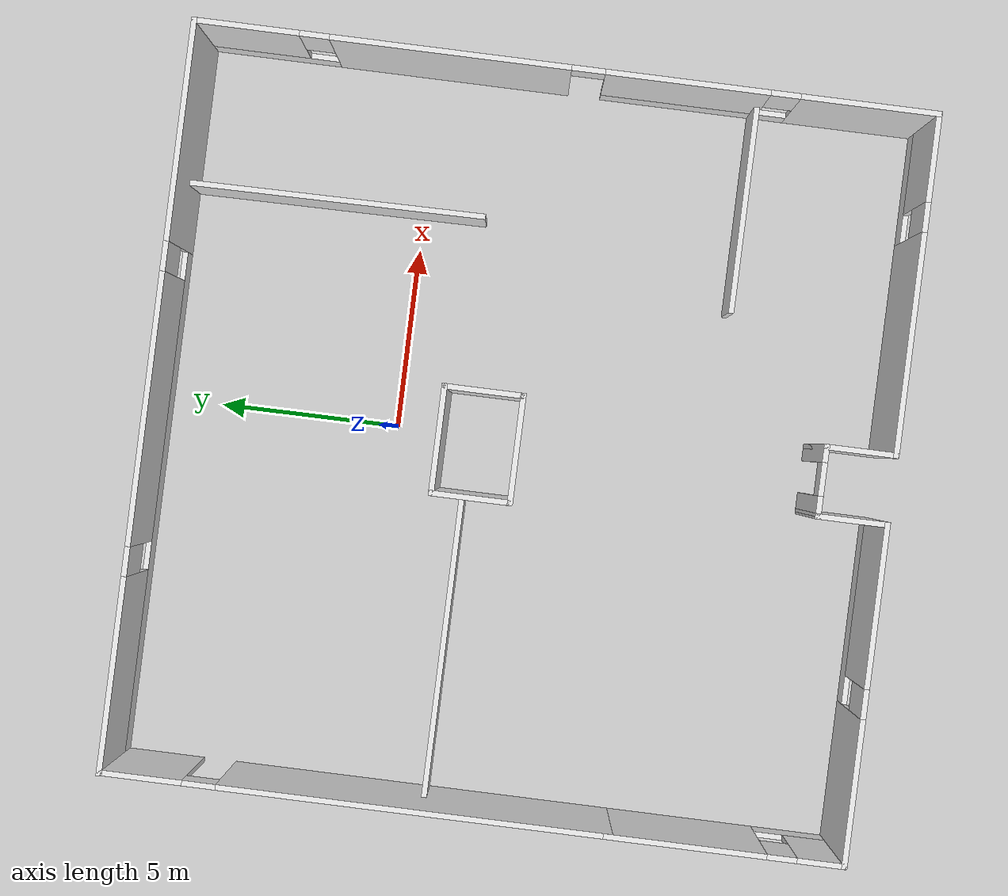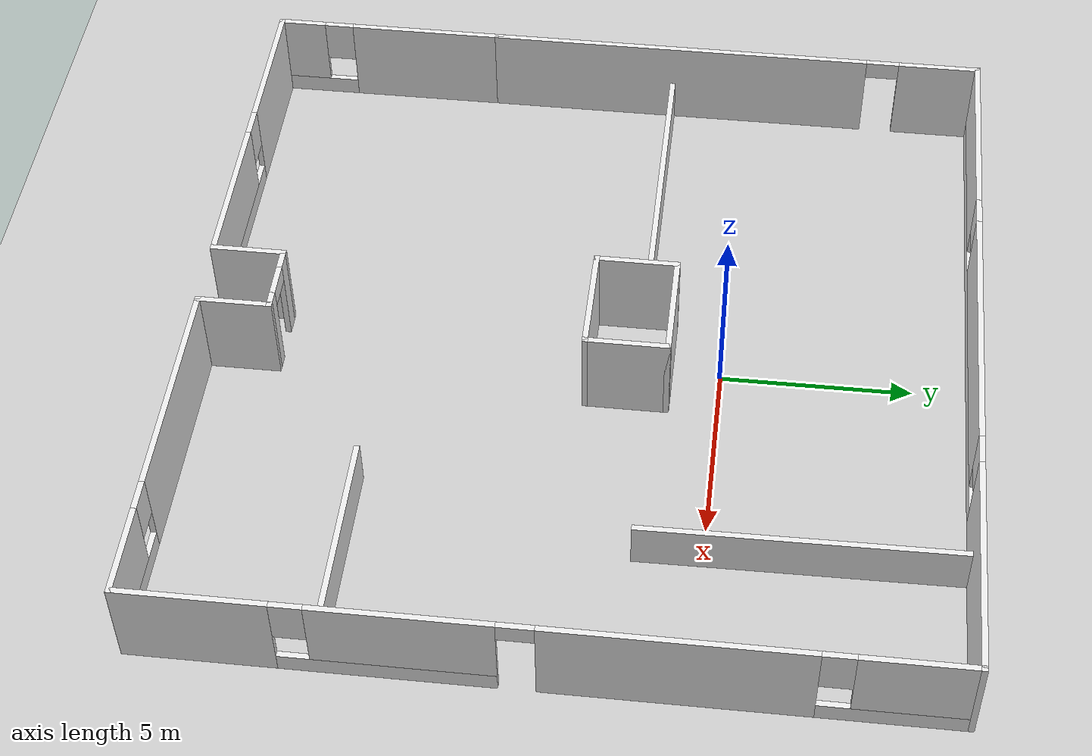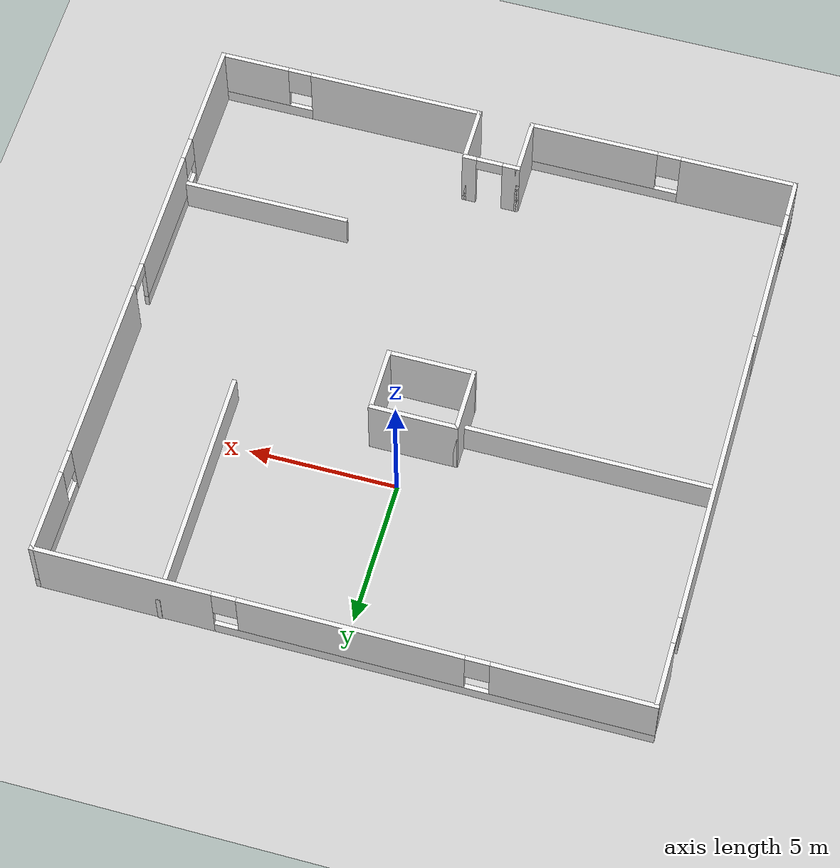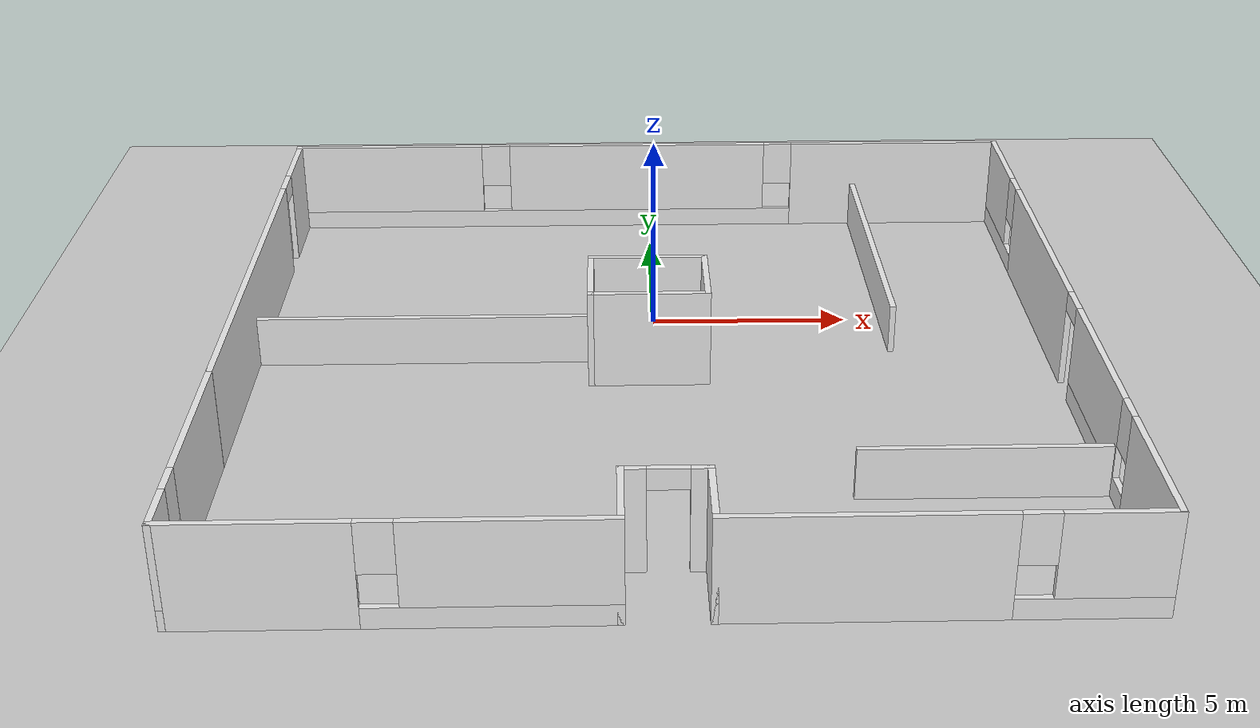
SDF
<sdf version="1.7">
 <world name="default">
  <light name="sun" type="directional">
   <pose>0 0 10 0 -0 0</pose>
   <diffuse>0.8 0.8 0.8 1</diffuse>
   <specular>0.2 0.2 0.2 1</specular>
   <attenuation>
    <range>1000</range>
    <constant>0.9</constant>
    <linear>0.01</linear>
    <quadratic>0.001</quadratic>
   </attenuation>
   <direction>-0.5 0.1 -0.9</direction>
   <spot><inner_angle>0</inner_angle><outer_angle>0</outer_angle><falloff>0</falloff></spot>
  </light>
  <model name="ground_plane">
   <static>1</static>
   <link name="link">
    <collision name="collision">
     <geometry><plane><normal>0 0 1</normal><size>100 100</size></plane></geometry>
     <surface><friction><ode><mu>100</mu><mu2>50</mu2></ode></friction></surface>
    </collision>
    <visual name="visual">
     <cast_shadows>0</cast_shadows>
     <geometry><plane><normal>0 0 1</normal><size>100 100</size></plane></geometry>
     <material>
      <script><uri>file://media/materials/scripts/gazebo.material</uri><name>Gazebo/Grey</name></script>
     </material>
    </visual>
   </link>
  </model>
  <gravity>0 0 -9.8</gravity>
  <magnetic_field>6e-06 2.3e-05 -4.2e-05</magnetic_field>
  <atmosphere type="adiabatic"/>
  <physics type="ode">
   <max_step_size>0.001</max_step_size>
   <real_time_factor>1</real_time_factor>
   <real_time_update_rate>1000</real_time_update_rate>
  </physics>
  <scene><ambient>0.4 0.4 0.4 1</ambient><background>0.7 0.7 0.7 1</background><shadows>1</shadows></scene>
  <spherical_coordinates>
   <surface_model>EARTH_WGS84</surface_model>
   <latitude_deg>0</latitude_deg>
   <longitude_deg>0</longitude_deg>
   <elevation>0</elevation>
   <heading_deg>0</heading_deg>
  </spherical_coordinates>
  <model name="office_env_w">
   <pose>-5.83086 -2.08723 0 0 -0 0</pose>
   <link name="Wall_10">
    <visual name="Wall_10_Visual_0">
     <geometry><box><size>8.324 0.15 2.5</size></box></geometry>
     <material>
      <script>
       <uri>model://office_env_w/materials/scripts</uri>
       <uri>model://office_env_w/materials/textures</uri>
       <name>wall_white</name>
      </script>
     </material>
     <meta><layer>0</layer></meta>
    </visual>
    <collision name="Wall_10_Collision_0"><geometry><box><size>8.324 0.15 2.5</size></box></geometry></collision>
   </link>
   <static>1</static>
  </model>
  <model name="office_env_w_0">
   <pose>5.97084 2.39161 0 0 0 -1.56057</pose>
   <link name="Wall_10">
    <visual name="Wall_10_Visual_0">
     <geometry><box><size>8.324 0.15 2.5</size></box></geometry>
     <material>
      <script>
       <uri>model://office_env_w/materials/scripts</uri>
       <uri>model://office_env_w/materials/textures</uri>
       <name>wall_white</name>
      </script>
     </material>
     <meta><layer>0</layer></meta>
    </visual>
    <collision name="Wall_10_Collision_0"><geometry><box><size>8.324 0.15 2.5</size></box></geometry></collision>
   </link>
   <static>1</static>
  </model>
  <model name="office_env_w3">
   <pose>7.10389 -8.7711 0 0 -0 0</pose>
   <link name="Wall_10">
    <visual name="Wall_10_Visual_0">
     <geometry><box><size>5.733 0.15 2.5</size></box></geometry>
     <material>
      <script>
       <uri>model://office_env_w/materials/scripts</uri>
       <uri>model://office_env_w/materials/textures</uri>
       <name>wall_white</name>
      </script>
     </material>
     <meta><layer>0</layer></meta>
    </visual>
    <collision name="Wall_10_Collision_0"><geometry><box><size>5.733 0.15 2.5</size></box></geometry></collision>
   </link>
   <static>1</static>
  </model>
  <model name="office_env_w_complete_0">
   <pose>-0.03245 -3.4623 0 0 -0 0</pose>
   <link name="Wall_10">
    <pose>-5.46873 -9.925 0 0 -0 0</pose>
    <visual name="Wall_10_Visual_0">
     <pose>-2.62812 0 1.25 0 -0 0</pose>
     <geometry><box><size>3.99376 0.15 2.5</size></box></geometry>
     <material>
      <script>
       <uri>model://office_env_w/materials/scripts</uri>
       <uri>model://office_env_w/materials/textures</uri>
       <name>wall_white</name>
      </script>
     </material>
     <meta><layer>0</layer></meta>
    </visual>
    <collision name="Wall_10_Collision_0">
     <geometry><box><size>3.99376 0.15 2.5</size></box></geometry>
     <pose>-2.62812 0 1.25 0 -0 0</pose>
    </collision>
    <visual name="Wall_10_Visual_1">
     <pose>1.99688 0 0.25 0 -0 0</pose>
     <geometry><box><size>5.25624 0.15 0.5</size></box></geometry>
     <material>
      <script>
       <uri>model://office_env_w/materials/scripts</uri>
       <uri>model://office_env_w/materials/textures</uri>
       <name>wall_white</name>
      </script>
     </material>
     <meta><layer>0</layer></meta>
    </visual>
    <collision name="Wall_10_Collision_1">
     <geometry><box><size>5.25624 0.15 0.5</size></box></geometry>
     <pose>1.99688 0 0.25 0 -0 0</pose>
    </collision>
    <visual name="Wall_10_Visual_2">
     <pose>2.39688 0 1.5 0 -0 0</pose>
     <geometry><box><size>4.45624 0.15 2</size></box></geometry>
     <material>
      <script>
       <uri>model://office_env_w/materials/scripts</uri>
       <uri>model://office_env_w/materials/textures</uri>
       <name>wall_white</name>
      </script>
     </material>
     <meta><layer>0</layer></meta>
    </visual>
    <collision name="Wall_10_Collision_2">
     <geometry><box><size>4.45624 0.15 2</size></box></geometry>
     <pose>2.39688 0 1.5 0 -0 0</pose>
    </collision>
    <visual name="Wall_10_Visual_3">
     <pose>-0.231239 0 1.9 0 -0 0</pose>
     <geometry><box><size>0.8 0.15 1.2</size></box></geometry>
     <material>
      <script>
       <uri>model://office_env_w/materials/scripts</uri>
       <uri>model://office_env_w/materials/textures</uri>
       <name>wall_white</name>
      </script>
     </material>
     <meta><layer>0</layer></meta>
    </visual>
    <collision name="Wall_10_Collision_3">
     <geometry><box><size>0.8 0.15 1.2</size></box></geometry>
     <pose>-0.231239 0 1.9 0 -0 0</pose>
    </collision>
   </link>
   <static>1</static>
   <link name="Wall_11">
    <collision name="Wall_11_Collision">
     <geometry><box><size>2 0.15 2.5</size></box></geometry>
     <pose>0 0 1.25 0 -0 0</pose>
    </collision>
    <visual name="Wall_11_Visual">
     <pose>0 0 1.25 0 -0 0</pose>
     <geometry><box><size>2 0.15 2.5</size></box></geometry>
     <material>
      <script>
       <uri>model://office_env_w/materials/scripts</uri>
       <uri>model://office_env_w/materials/textures</uri>
       <name>wall_white</name>
      </script>
     </material>
     <meta><layer>0</layer></meta>
    </visual>
    <pose>-0.918728 -9 0 0 -0 1.5708</pose>
   </link>
   <link name="Wall_12">
    <pose>0.006272 -8.075 0 0 -0 0</pose>
    <visual name="Wall_12_Visual_0">
     <pose>-0.695653 0 1.25 0 -0 0</pose>
     <geometry><box><size>0.608694 0.15 2.5</size></box></geometry>
     <material>
      <script>
       <uri>model://office_env_w/materials/scripts</uri>
       <uri>model://office_env_w/materials/textures</uri>
       <name>wall_white</name>
      </script>
     </material>
     <meta><layer>0</layer></meta>
    </visual>
    <collision name="Wall_12_Collision_0">
     <geometry><box><size>0.608694 0.15 2.5</size></box></geometry>
     <pose>-0.695653 0 1.25 0 -0 0</pose>
    </collision>
    <visual name="Wall_12_Visual_1">
     <pose>0.754347 0 1.25 0 -0 0</pose>
     <geometry><box><size>0.491306 0.15 2.5</size></box></geometry>
     <material>
      <script>
       <uri>model://office_env_w/materials/scripts</uri>
       <uri>model://office_env_w/materials/textures</uri>
       <name>wall_white</name>
      </script>
     </material>
     <meta><layer>0</layer></meta>
    </visual>
    <collision name="Wall_12_Collision_1">
     <geometry><box><size>0.491306 0.15 2.5</size></box></geometry>
     <pose>0.754347 0 1.25 0 -0 0</pose>
    </collision>
    <visual name="Wall_12_Visual_2">
     <pose>0.058694 0 2.25 0 -0 0</pose>
     <geometry><box><size>0.9 0.15 0.5</size></box></geometry>
     <material>
      <script>
       <uri>model://office_env_w/materials/scripts</uri>
       <uri>model://office_env_w/materials/textures</uri>
       <name>wall_white</name>
      </script>
     </material>
     <meta><layer>0</layer></meta>
    </visual>
    <collision name="Wall_12_Collision_2">
     <geometry><box><size>0.9 0.15 0.5</size></box></geometry>
     <pose>0.058694 0 2.25 0 -0 0</pose>
    </collision>
   </link>
   <static>1</static>
   <link name="Wall_15">
    <collision name="Wall_15_Collision">
     <geometry><box><size>2 0.15 2.5</size></box></geometry>
     <pose>0 0 1.25 0 -0 0</pose>
    </collision>
    <visual name="Wall_15_Visual">
     <pose>0 0 1.25 0 -0 0</pose>
     <geometry><box><size>2 0.15 2.5</size></box></geometry>
     <material>
      <script>
       <uri>model://office_env_w/materials/scripts</uri>
       <uri>model://office_env_w/materials/textures</uri>
       <name>wall_white</name>
      </script>
     </material>
     <meta><layer>0</layer></meta>
    </visual>
    <pose>0.931272 -9 0 0 0 -1.5708</pose>
   </link>
   <link name="Wall_16">
    <pose>5.48127 -9.925 0 0 -0 0</pose>
    <visual name="Wall_16_Visual_0">
     <pose>-1.61303 0 1.25 0 -0 0</pose>
     <geometry><box><size>6.02393 0.15 2.5</size></box></geometry>
     <material>
      <script>
       <uri>model://office_env_w/materials/scripts</uri>
       <uri>model://office_env_w/materials/textures</uri>
       <name>wall_white</name>
      </script>
     </material>
     <meta><layer>0</layer></meta>
    </visual>
    <collision name="Wall_16_Collision_0">
     <geometry><box><size>6.02393 0.15 2.5</size></box></geometry>
     <pose>-1.61303 0 1.25 0 -0 0</pose>
    </collision>
    <visual name="Wall_16_Visual_1">
     <pose>3.01197 0 0.25 0 -0 0</pose>
     <geometry><box><size>3.22607 0.15 0.5</size></box></geometry>
     <material>
      <script>
       <uri>model://office_env_w/materials/scripts</uri>
       <uri>model://office_env_w/materials/textures</uri>
       <name>wall_white</name>
      </script>
     </material>
     <meta><layer>0</layer></meta>
    </visual>
    <collision name="Wall_16_Collision_1">
     <geometry><box><size>3.22607 0.15 0.5</size></box></geometry>
     <pose>3.01197 0 0.25 0 -0 0</pose>
    </collision>
    <visual name="Wall_16_Visual_2">
     <pose>3.41197 0 1.5 0 -0 0</pose>
     <geometry><box><size>2.42607 0.15 2</size></box></geometry>
     <material>
      <script>
       <uri>model://office_env_w/materials/scripts</uri>
       <uri>model://office_env_w/materials/textures</uri>
       <name>wall_white</name>
      </script>
     </material>
     <meta><layer>0</layer></meta>
    </visual>
    <collision name="Wall_16_Collision_2">
     <geometry><box><size>2.42607 0.15 2</size></box></geometry>
     <pose>3.41197 0 1.5 0 -0 0</pose>
    </collision>
    <visual name="Wall_16_Visual_3">
     <pose>1.79893 0 1.9 0 -0 0</pose>
     <geometry><box><size>0.8 0.15 1.2</size></box></geometry>
     <material>
      <script>
       <uri>model://office_env_w/materials/scripts</uri>
       <uri>model://office_env_w/materials/textures</uri>
       <name>wall_white</name>
      </script>
     </material>
     <meta><layer>0</layer></meta>
    </visual>
    <collision name="Wall_16_Collision_3">
     <geometry><box><size>0.8 0.15 1.2</size></box></geometry>
     <pose>1.79893 0 1.9 0 -0 0</pose>
    </collision>
   </link>
   <static>1</static>
   <link name="Wall_17">
    <pose>10.0313 0 0 0 -0 1.5708</pose>
    <visual name="Wall_17_Visual_0">
     <pose>-8.12184 0 1.25 0 -0 0</pose>
     <geometry><box><size>3.75631 0.15 2.5</size></box></geometry>
     <material>
      <script>
       <uri>model://office_env_w/materials/scripts</uri>
       <uri>model://office_env_w/materials/textures</uri>
       <name>wall_white</name>
      </script>
     </material>
     <meta><layer>0</layer></meta>
    </visual>
    <collision name="Wall_17_Collision_0">
     <geometry><box><size>3.75631 0.15 2.5</size></box></geometry>
     <pose>-8.12184 0 1.25 0 -0 0</pose>
    </collision>
    <visual name="Wall_17_Visual_1">
     <pose>3.09096 0 1.25 0 -0 0</pose>
     <geometry><box><size>6.45362 0.15 2.5</size></box></geometry>
     <material>
      <script>
       <uri>model://office_env_w/materials/scripts</uri>
       <uri>model://office_env_w/materials/textures</uri>
       <name>wall_white</name>
      </script>
     </material>
     <meta><layer>0</layer></meta>
    </visual>
    <collision name="Wall_17_Collision_1">
     <geometry><box><size>6.45362 0.15 2.5</size></box></geometry>
     <pose>3.09096 0 1.25 0 -0 0</pose>
    </collision>
    <visual name="Wall_17_Visual_2">
     <pose>-3.63977 0 0.25 0 -0 0</pose>
     <geometry><box><size>5.20784 0.15 0.5</size></box></geometry>
     <material>
      <script>
       <uri>model://office_env_w/materials/scripts</uri>
       <uri>model://office_env_w/materials/textures</uri>
       <name>wall_white</name>
      </script>
     </material>
     <meta><layer>0</layer></meta>
    </visual>
    <collision name="Wall_17_Collision_2">
     <geometry><box><size>5.20784 0.15 0.5</size></box></geometry>
     <pose>-3.63977 0 0.25 0 -0 0</pose>
    </collision>
    <visual name="Wall_17_Visual_3">
     <pose>8.15888 0 0.25 0 -0 0</pose>
     <geometry><box><size>3.68223 0.15 0.5</size></box></geometry>
     <material>
      <script>
       <uri>model://office_env_w/materials/scripts</uri>
       <uri>model://office_env_w/materials/textures</uri>
       <name>wall_white</name>
      </script>
     </material>
     <meta><layer>0</layer></meta>
    </visual>
    <collision name="Wall_17_Collision_3">
     <geometry><box><size>3.68223 0.15 0.5</size></box></geometry>
     <pose>8.15888 0 0.25 0 -0 0</pose>
    </collision>
    <visual name="Wall_17_Visual_4">
     <pose>-3.23977 0 1.5 0 -0 0</pose>
     <geometry><box><size>4.40784 0.15 2</size></box></geometry>
     <material>
      <script>
       <uri>model://office_env_w/materials/scripts</uri>
       <uri>model://office_env_w/materials/textures</uri>
       <name>wall_white</name>
      </script>
     </material>
     <meta><layer>0</layer></meta>
    </visual>
    <collision name="Wall_17_Collision_4">
     <geometry><box><size>4.40784 0.15 2</size></box></geometry>
     <pose>-3.23977 0 1.5 0 -0 0</pose>
    </collision>
    <visual name="Wall_17_Visual_5">
     <pose>-3.23977 0 1.5 0 -0 0</pose>
     <geometry><box><size>4.40784 0.15 2</size></box></geometry>
     <material>
      <script>
       <uri>model://office_env_w/materials/scripts</uri>
       <uri>model://office_env_w/materials/textures</uri>
       <name>wall_white</name>
      </script>
     </material>
     <meta><layer>0</layer></meta>
    </visual>
    <collision name="Wall_17_Collision_5">
     <geometry><box><size>4.40784 0.15 2</size></box></geometry>
     <pose>-3.23977 0 1.5 0 -0 0</pose>
    </collision>
    <visual name="Wall_17_Visual_6">
     <pose>8.55889 0 1.5 0 -0 0</pose>
     <geometry><box><size>2.88223 0.15 2</size></box></geometry>
     <material>
      <script>
       <uri>model://office_env_w/materials/scripts</uri>
       <uri>model://office_env_w/materials/textures</uri>
       <name>wall_white</name>
      </script>
     </material>
     <meta><layer>0</layer></meta>
    </visual>
    <collision name="Wall_17_Collision_6">
     <geometry><box><size>2.88223 0.15 2</size></box></geometry>
     <pose>8.55889 0 1.5 0 -0 0</pose>
    </collision>
    <visual name="Wall_17_Visual_7">
     <pose>-5.84369 0 1.9 0 -0 0</pose>
     <geometry><box><size>0.8 0.15 1.2</size></box></geometry>
     <material>
      <script>
       <uri>model://office_env_w/materials/scripts</uri>
       <uri>model://office_env_w/materials/textures</uri>
       <name>wall_white</name>
      </script>
     </material>
     <meta><layer>0</layer></meta>
    </visual>
    <collision name="Wall_17_Collision_7">
     <geometry><box><size>0.8 0.15 1.2</size></box></geometry>
     <pose>-5.84369 0 1.9 0 -0 0</pose>
    </collision>
    <visual name="Wall_17_Visual_8">
     <pose>6.71777 0 1.9 0 -0 0</pose>
     <geometry><box><size>0.8 0.15 1.2</size></box></geometry>
     <material>
      <script>
       <uri>model://office_env_w/materials/scripts</uri>
       <uri>model://office_env_w/materials/textures</uri>
       <name>wall_white</name>
      </script>
     </material>
     <meta><layer>0</layer></meta>
    </visual>
    <collision name="Wall_17_Collision_8">
     <geometry><box><size>0.8 0.15 1.2</size></box></geometry>
     <pose>6.71777 0 1.9 0 -0 0</pose>
    </collision>
    <visual name="Wall_17_Visual_9">
     <pose>-0.585848 0 2.25 0 -0 0</pose>
     <geometry><box><size>0.9 0.15 0.5</size></box></geometry>
     <material>
      <script>
       <uri>model://office_env_w/materials/scripts</uri>
       <uri>model://office_env_w/materials/textures</uri>
       <name>wall_white</name>
      </script>
     </material>
     <meta><layer>0</layer></meta>
    </visual>
    <collision name="Wall_17_Collision_9">
     <geometry><box><size>0.9 0.15 0.5</size></box></geometry>
     <pose>-0.585848 0 2.25 0 -0 0</pose>
    </collision>
    <visual name="Wall_17_Visual_10">
     <pose>-0.585848 0 2.25 0 -0 0</pose>
     <geometry><box><size>0.9 0.15 0.5</size></box></geometry>
     <material>
      <script>
       <uri>model://office_env_w/materials/scripts</uri>
       <uri>model://office_env_w/materials/textures</uri>
       <name>wall_white</name>
      </script>
     </material>
     <meta><layer>0</layer></meta>
    </visual>
    <collision name="Wall_17_Collision_10">
     <geometry><box><size>0.9 0.15 0.5</size></box></geometry>
     <pose>-0.585848 0 2.25 0 -0 0</pose>
    </collision>
   </link>
   <static>1</static>
   <static>1</static>
   <static>1</static>
   <link name="Wall_19">
    <pose>-0 9.925 0 0 -0 3.14159</pose>
    <visual name="Wall_19_Visual_0">
     <pose>-7.12533 0 1.25 0 -0 0</pose>
     <geometry><box><size>5.96188 0.15 2.5</size></box></geometry>
     <material>
      <script>
       <uri>model://office_env_w/materials/scripts</uri>
       <uri>model://office_env_w/materials/textures</uri>
       <name>wall_white</name>
      </script>
     </material>
     <meta><layer>0</layer></meta>
    </visual>
    <collision name="Wall_19_Collision_0">
     <geometry><box><size>5.96188 0.15 2.5</size></box></geometry>
     <pose>-7.12533 0 1.25 0 -0 0</pose>
    </collision>
    <visual name="Wall_19_Visual_1">
     <pose>2.98094 0 0.25 0 -0 0</pose>
     <geometry><box><size>14.2507 0.15 0.5</size></box></geometry>
     <material>
      <script>
       <uri>model://office_env_w/materials/scripts</uri>
       <uri>model://office_env_w/materials/textures</uri>
       <name>wall_white</name>
      </script>
     </material>
     <meta><layer>0</layer></meta>
    </visual>
    <collision name="Wall_19_Collision_1">
     <geometry><box><size>14.2507 0.15 0.5</size></box></geometry>
     <pose>2.98094 0 0.25 0 -0 0</pose>
    </collision>
    <visual name="Wall_19_Visual_2">
     <pose>0.326454 0 1.5 0 -0 0</pose>
     <geometry><box><size>7.34169 0.15 2</size></box></geometry>
     <material>
      <script>
       <uri>model://office_env_w/materials/scripts</uri>
       <uri>model://office_env_w/materials/textures</uri>
       <name>wall_white</name>
      </script>
     </material>
     <meta><layer>0</layer></meta>
    </visual>
    <collision name="Wall_19_Collision_2">
     <geometry><box><size>7.34169 0.15 2</size></box></geometry>
     <pose>0.326454 0 1.5 0 -0 0</pose>
    </collision>
    <visual name="Wall_19_Visual_3">
     <pose>7.45179 0 1.5 0 -0 0</pose>
     <geometry><box><size>5.30898 0.15 2</size></box></geometry>
     <material>
      <script>
       <uri>model://office_env_w/materials/scripts</uri>
       <uri>model://office_env_w/materials/textures</uri>
       <name>wall_white</name>
      </script>
     </material>
     <meta><layer>0</layer></meta>
    </visual>
    <collision name="Wall_19_Collision_3">
     <geometry><box><size>5.30898 0.15 2</size></box></geometry>
     <pose>7.45179 0 1.5 0 -0 0</pose>
    </collision>
    <visual name="Wall_19_Visual_4">
     <pose>-3.74439 0 1.9 0 -0 0</pose>
     <geometry><box><size>0.8 0.15 1.2</size></box></geometry>
     <material>
      <script>
       <uri>model://office_env_w/materials/scripts</uri>
       <uri>model://office_env_w/materials/textures</uri>
       <name>wall_white</name>
      </script>
     </material>
     <meta><layer>0</layer></meta>
    </visual>
    <collision name="Wall_19_Collision_4">
     <geometry><box><size>0.8 0.15 1.2</size></box></geometry>
     <pose>-3.74439 0 1.9 0 -0 0</pose>
    </collision>
    <visual name="Wall_19_Visual_5">
     <pose>4.3973 0 1.9 0 -0 0</pose>
     <geometry><box><size>0.8 0.15 1.2</size></box></geometry>
     <material>
      <script>
       <uri>model://office_env_w/materials/scripts</uri>
       <uri>model://office_env_w/materials/textures</uri>
       <name>wall_white</name>
      </script>
     </material>
     <meta><layer>0</layer></meta>
    </visual>
    <collision name="Wall_19_Collision_5">
     <geometry><box><size>0.8 0.15 1.2</size></box></geometry>
     <pose>4.3973 0 1.9 0 -0 0</pose>
    </collision>
   </link>
   <static>1</static>
   <static>1</static>
   <link name="Wall_2">
    <pose>-10.0187 -6.75 0 0 0 -1.5708</pose>
    <visual name="Wall_2_Visual_0">
     <pose>-1.06854 0 1.25 0 -0 0</pose>
     <geometry><box><size>4.36293 0.15 2.5</size></box></geometry>
     <material>
      <script>
       <uri>model://office_env_w/materials/scripts</uri>
       <uri>model://office_env_w/materials/textures</uri>
       <name>wall_white</name>
      </script>
     </material>
     <meta><layer>0</layer></meta>
    </visual>
    <collision name="Wall_2_Collision_0">
     <geometry><box><size>4.36293 0.15 2.5</size></box></geometry>
     <pose>-1.06854 0 1.25 0 -0 0</pose>
    </collision>
    <visual name="Wall_2_Visual_1">
     <pose>2.18147 0 0.25 0 -0 0</pose>
     <geometry><box><size>2.13707 0.15 0.5</size></box></geometry>
     <material>
      <script>
       <uri>model://office_env_w/materials/scripts</uri>
       <uri>model://office_env_w/materials/textures</uri>
       <name>wall_white</name>
      </script>
     </material>
     <meta><layer>0</layer></meta>
    </visual>
    <collision name="Wall_2_Collision_1">
     <geometry><box><size>2.13707 0.15 0.5</size></box></geometry>
     <pose>2.18147 0 0.25 0 -0 0</pose>
    </collision>
    <visual name="Wall_2_Visual_2">
     <pose>2.58147 0 1.5 0 -0 0</pose>
     <geometry><box><size>1.33707 0.15 2</size></box></geometry>
     <material>
      <script>
       <uri>model://office_env_w/materials/scripts</uri>
       <uri>model://office_env_w/materials/textures</uri>
       <name>wall_white</name>
      </script>
     </material>
     <meta><layer>0</layer></meta>
    </visual>
    <collision name="Wall_2_Collision_2">
     <geometry><box><size>1.33707 0.15 2</size></box></geometry>
     <pose>2.58147 0 1.5 0 -0 0</pose>
    </collision>
    <visual name="Wall_2_Visual_3">
     <pose>1.51293 0 1.9 0 -0 0</pose>
     <geometry><box><size>0.8 0.15 1.2</size></box></geometry>
     <material>
      <script>
       <uri>model://office_env_w/materials/scripts</uri>
       <uri>model://office_env_w/materials/textures</uri>
       <name>wall_white</name>
      </script>
     </material>
     <meta><layer>0</layer></meta>
    </visual>
    <collision name="Wall_2_Collision_3">
     <geometry><box><size>0.8 0.15 1.2</size></box></geometry>
     <pose>1.51293 0 1.9 0 -0 0</pose>
    </collision>
   </link>
   <static>1</static>
   <link name="Wall_20">
    <pose>-10.018 3.125 0 0 0 -1.5708</pose>
    <visual name="Wall_20_Visual_0">
     <pose>-5.73803 0 1.25 0 -0 0</pose>
     <geometry><box><size>2.27394 0.15 2.5</size></box></geometry>
     <material>
      <script>
       <uri>model://office_env_w/materials/scripts</uri>
       <uri>model://office_env_w/materials/textures</uri>
       <name>wall_white</name>
      </script>
     </material>
     <meta><layer>0</layer></meta>
    </visual>
    <collision name="Wall_20_Collision_0">
     <geometry><box><size>2.27394 0.15 2.5</size></box></geometry>
     <pose>-5.73803 0 1.25 0 -0 0</pose>
    </collision>
    <visual name="Wall_20_Visual_1">
     <pose>1.58697 0 1.25 0 -0 0</pose>
     <geometry><box><size>10.5761 0.15 2.5</size></box></geometry>
     <material>
      <script>
       <uri>model://office_env_w/materials/scripts</uri>
       <uri>model://office_env_w/materials/textures</uri>
       <name>wall_white</name>
      </script>
     </material>
     <meta><layer>0</layer></meta>
    </visual>
    <collision name="Wall_20_Collision_1">
     <geometry><box><size>10.5761 0.15 2.5</size></box></geometry>
     <pose>1.58697 0 1.25 0 -0 0</pose>
    </collision>
    <visual name="Wall_20_Visual_2">
     <pose>-4.15106 0 2.25 0 -0 0</pose>
     <geometry><box><size>0.9 0.15 0.5</size></box></geometry>
     <material>
      <script>
       <uri>model://office_env_w/materials/scripts</uri>
       <uri>model://office_env_w/materials/textures</uri>
       <name>wall_white</name>
      </script>
     </material>
     <meta><layer>0</layer></meta>
    </visual>
    <collision name="Wall_20_Collision_2">
     <geometry><box><size>0.9 0.15 0.5</size></box></geometry>
     <pose>-4.15106 0 2.25 0 -0 0</pose>
    </collision>
   </link>
   <static>1</static>
   <link name="Wall_22">
    <collision name="Wall_22_Collision">
     <geometry><box><size>3 0.15 2.5</size></box></geometry>
     <pose>0 0 1.25 0 -0 0</pose>
    </collision>
    <visual name="Wall_22_Visual">
     <pose>0 0 1.25 0 -0 0</pose>
     <geometry><box><size>3 0.15 2.5</size></box></geometry>
     <material>
      <script>
       <uri>model://office_env_w/materials/scripts</uri>
       <uri>model://office_env_w/materials/textures</uri>
       <name>wall_white</name>
      </script>
     </material>
     <meta><layer>0</layer></meta>
    </visual>
    <pose>-0.163956 0.04737 0 0 -0 3.14159</pose>
   </link>
   <link name="Wall_23">
    <collision name="Wall_23_Collision">
     <geometry><box><size>2.25 0.15 2.5</size></box></geometry>
     <pose>0 0 1.25 0 -0 0</pose>
    </collision>
    <visual name="Wall_23_Visual">
     <pose>0 0 1.25 0 -0 0</pose>
     <geometry><box><size>2.25 0.15 2.5</size></box></geometry>
     <material>
      <script>
       <uri>model://office_env_w/materials/scripts</uri>
       <uri>model://office_env_w/materials/textures</uri>
       <name>wall_white</name>
      </script>
     </material>
     <meta><layer>0</layer></meta>
    </visual>
    <pose>-1.58896 1.09737 0 0 -0 1.5708</pose>
   </link>
   <link name="Wall_24">
    <collision name="Wall_24_Collision">
     <geometry><box><size>3 0.15 2.5</size></box></geometry>
     <pose>0 0 1.25 0 -0 0</pose>
    </collision>
    <visual name="Wall_24_Visual">
     <pose>0 0 1.25 0 -0 0</pose>
     <geometry><box><size>3 0.15 2.5</size></box></geometry>
     <material>
      <script>
       <uri>model://office_env_w/materials/scripts</uri>
       <uri>model://office_env_w/materials/textures</uri>
       <name>wall_white</name>
      </script>
     </material>
     <meta><layer>0</layer></meta>
    </visual>
    <pose>-0.163956 2.14737 0 0 -0 0</pose>
   </link>
   <link name="Wall_25">
    <collision name="Wall_25_Collision">
     <geometry><box><size>2.25 0.15 2.5</size></box></geometry>
     <pose>0 0 1.25 0 -0 0</pose>
    </collision>
    <visual name="Wall_25_Visual">
     <pose>0 0 1.25 0 -0 0</pose>
     <geometry><box><size>2.25 0.15 2.5</size></box></geometry>
     <material>
      <script>
       <uri>model://office_env_w/materials/scripts</uri>
       <uri>model://office_env_w/materials/textures</uri>
       <name>wall_white</name>
      </script>
     </material>
     <meta><layer>0</layer></meta>
    </visual>
    <pose>1.26104 1.09737 0 0 0 -1.5708</pose>
   </link>
   <static>1</static>
  </model>
  <model name="Apriltag36_11_00000">
   <static>1</static>
   <link name="link">
    <visual name="front_visual">
     <pose>5e-05 0 0 0 -0 0</pose>
     <geometry><box><size>0.05 0.45 0.45</size></box></geometry>
     <material>
      <script>
       <uri>model://Apriltag36_11_00000/materials/scripts</uri>
       <uri>model://Apriltag36_11_00000/materials/textures</uri>
       <name>Apriltag36_11_00000</name>
      </script>
     </material>
    </visual>
    <visual name="rear_visual">
     <pose>-5e-05 0 0 0 -0 0</pose>
     <geometry><box><size>0.05 0.45 0.45</size></box></geometry>
    </visual>
   </link>
   <pose>5.95441 0.465036 0.65 0 0 -3.14159</pose>
  </model>
  <model name="Apriltag36_11_00001">
   <static>1</static>
   <link name="link">
    <visual name="front_visual">
     <pose>5e-05 0 0 0 -0 0</pose>
     <geometry><box><size>0.05 0.45 0.45</size></box></geometry>
     <material>
      <script>
       <uri>model://Apriltag36_11_00001/materials/scripts</uri>
       <uri>model://Apriltag36_11_00001/materials/textures</uri>
       <name>Apriltag36_11_00001</name>
      </script>
     </material>
    </visual>
    <visual name="rear_visual">
     <pose>-5e-05 0 0 0 -0 0</pose>
     <geometry><box><size>0.05 0.45 0.45</size></box></geometry>
    </visual>
   </link>
   <pose>9.96537 -5.6089 0.65 0 0 -3.14159</pose>
  </model>
  <model name="Apriltag36_11_00002">
   <static>1</static>
   <link name="link">
    <visual name="front_visual">
     <pose>5e-05 0 0 0 -0 0</pose>
     <geometry><box><size>0.05 0.45 0.45</size></box></geometry>
     <material>
      <script>
       <uri>model://Apriltag36_11_00002/materials/scripts</uri>
       <uri>model://Apriltag36_11_00002/materials/textures</uri>
       <name>Apriltag36_11_00002</name>
      </script>
     </material>
    </visual>
    <visual name="rear_visual">
     <pose>-5e-05 0 0 0 -0 0</pose>
     <geometry><box><size>0.05 0.45 0.45</size></box></geometry>
    </visual>
   </link>
   <pose>0.734383 -11.498 0.65 0 -0 1.57079</pose>
  </model>
  <model name="Apriltag36_11_00003">
   <static>1</static>
   <link name="link">
    <visual name="front_visual">
     <pose>5e-05 0 0 0 -0 0</pose>
     <geometry><box><size>0.05 0.45 0.45</size></box></geometry>
     <material>
      <script>
       <uri>model://Apriltag36_11_00003/materials/scripts</uri>
       <uri>model://Apriltag36_11_00003/materials/textures</uri>
       <name>Apriltag36_11_00003</name>
      </script>
     </material>
    </visual>
    <visual name="rear_visual">
     <pose>-5e-05 0 0 0 -0 0</pose>
     <geometry><box><size>0.05 0.45 0.45</size></box></geometry>
    </visual>
   </link>
   <pose>-10.023 -6.74675 0.65 0 -0 0</pose>
  </model>
  <model name="Apriltag36_11_00005">
   <static>1</static>
   <link name="link">
    <visual name="front_visual">
     <pose>5e-05 0 0 0 -0 0</pose>
     <geometry><box><size>0.05 0.45 0.45</size></box></geometry>
     <material>
      <script>
       <uri>model://Apriltag36_11_00005/materials/scripts</uri>
       <uri>model://Apriltag36_11_00005/materials/textures</uri>
       <name>Apriltag36_11_00005</name>
      </script>
     </material>
    </visual>
    <visual name="rear_visual">
     <pose>-5e-05 0 0 0 -0 0</pose>
     <geometry><box><size>0.05 0.45 0.45</size></box></geometry>
    </visual>
   </link>
   <pose>-6.11978 -2.11833 0.65 0 0 -1.57079</pose>
  </model>
  <model name="Apriltag36_11_00006">
   <static>1</static>
   <link name="link">
    <visual name="front_visual">
     <pose>5e-05 0 0 0 -0 0</pose>
     <geometry><box><size>0.05 0.45 0.45</size></box></geometry>
     <material>
      <script>
       <uri>model://Apriltag36_11_00006/materials/scripts</uri>
       <uri>model://Apriltag36_11_00006/materials/textures</uri>
       <name>Apriltag36_11_00006</name>
      </script>
     </material>
    </visual>
    <visual name="rear_visual">
     <pose>-5e-05 0 0 0 -0 0</pose>
     <geometry><box><size>0.05 0.45 0.45</size></box></geometry>
    </visual>
   </link>
   <pose>-10.0226 4.87362 0.65 0 -0 0</pose>
  </model>
 </world>
</sdf>
